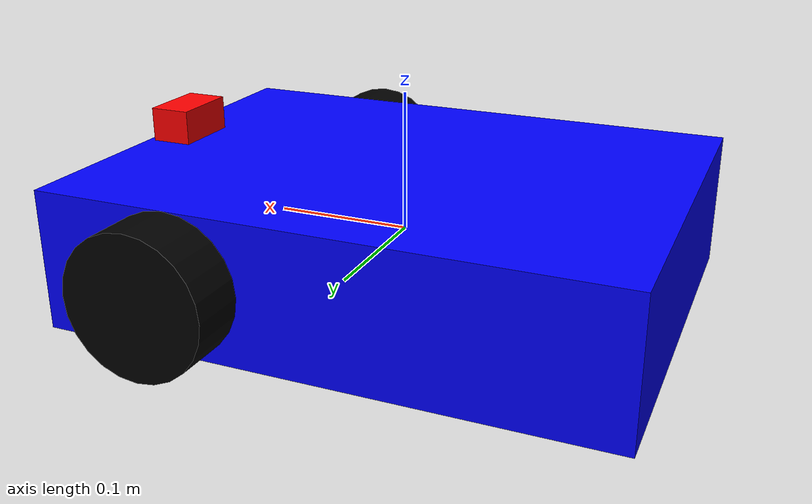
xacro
<?xml version="1.0"?>
<robot xmlns:xacro="http://www.ros.org/wiki/xacro" name="my_robot">

  <link name="base_link">
    <visual>
      <geometry>
        <box size="0.4 0.3 0.1"/>
      </geometry>
      <material name="blue">
        <color rgba="0.0 0.0 1.0 1.0"/>
      </material>
    </visual>
    <collision>
      <geometry>
        <box size="0.4 0.3 0.1"/>
      </geometry>
    </collision>
    <inertial>
        <mass value="5.0"/>
        <inertia ixx="0.04" ixy="0.0" ixz="0.0" iyy="0.07" iyz="0.0" izz="0.1"/>
    </inertial>
  </link>

  <link name="left_wheel_link">
    <visual>
      <geometry>
        <cylinder radius="0.05" length="0.04"/>
      </geometry>
      <material name="black">
        <color rgba="0.0 0.0 0.0 1.0"/>
      </material>
    </visual>
    <collision>
      <geometry>
        <cylinder radius="0.05" length="0.04"/>
      </geometry>
    </collision>
     <inertial>
        <mass value="0.5"/>
        <inertia ixx="0.0006" ixy="0.0" ixz="0.0" iyy="0.0006" iyz="0.0" izz="0.001"/>
    </inertial>
  </link>

  <link name="right_wheel_link">
    <visual>
      <geometry>
        <cylinder radius="0.05" length="0.04"/>
      </geometry>
      <material name="black"/>
    </visual>
    <collision>
      <geometry>
        <cylinder radius="0.05" length="0.04"/>
      </geometry>
    </collision>
    <inertial>
        <mass value="0.5"/>
        <inertia ixx="0.0006" ixy="0.0" ixz="0.0" iyy="0.0006" iyz="0.0" izz="0.001"/>
    </inertial>
  </link>

  <link name="caster_link">
    <visual>
      <geometry>
        <sphere radius="0.03"/>
      </geometry>
      <material name="grey">
        <color rgba="0.5 0.5 0.5 1.0"/>
      </material>
    </visual>
    <collision>
      <geometry>
        <sphere radius="0.03"/>
      </geometry>
    </collision>
    <inertial>
        <mass value="0.2"/>
        <inertia ixx="0.000048" ixy="0.0" ixz="0.0" iyy="0.000048" iyz="0.0" izz="0.000048"/>
    </inertial>
  </link>

  <link name="camera_link">
     <visual>
      <geometry>
        <box size="0.03 0.05 0.05"/>
      </geometry>
      <material name="red">
        <color rgba="1.0 0.0 0.0 1.0"/>
      </material>
    </visual>
     <collision>
      <geometry>
        <box size="0.03 0.05 0.05"/>
      </geometry>
    </collision>
     <inertial>
        <mass value="0.1"/>
        <inertia ixx="0.00004" ixy="0.0" ixz="0.0" iyy="0.00004" iyz="0.0" izz="0.00004"/>
    </inertial>
  </link>

  <joint name="left_wheel_joint" type="continuous">
    <parent link="base_link"/>
    <child link="left_wheel_link"/>
    <origin xyz="0.1 0.17 0.0" rpy="-1.5707 0 0"/>
    <axis xyz="0 0 1"/>
  </joint>

  <joint name="right_wheel_joint" type="continuous">
    <parent link="base_link"/>
    <child link="right_wheel_link"/>
    <origin xyz="0.1 -0.17 0.0" rpy="1.5707 0 0"/>
    <axis xyz="0 0 -1"/>
  </joint>

  <joint name="caster_joint" type="fixed">
    <parent link="base_link"/>
    <child link="caster_link"/>
    <origin xyz="-0.15 0.0 -0.02" rpy="0 0 0"/>
  </joint>

  <joint name="camera_joint" type="fixed">
    <parent link="base_link"/>
    <child link="camera_link"/>
    <origin xyz="0.18 0.0 0.05" rpy="0 0 0"/>
  </joint>

  <gazebo>
    <plugin name="diff_drive_controller" filename="libgazebo_ros_diff_drive.so">
      <ros>
        <command_topic>cmd_vel</command_topic>
        <odometry_topic>odom</odometry_topic>
        <odometry_frame>odom</odometry_frame>
        <robot_base_frame>base_link</robot_base_frame>
      </ros>

      <left_joint>left_wheel_joint</left_joint>
      <right_joint>right_wheel_joint</right_joint>
      <wheel_separation>0.34</wheel_separation>
      <wheel_diameter>0.1</wheel_diameter>

      <publish_odom>true</publish_odom>
      <publish_odom_tf>true</publish_odom_tf>
      <publish_wheel_tf>false</publish_wheel_tf>

      <update_rate>100</update_rate>
    </plugin>
  </gazebo>

  <gazebo reference="camera_link">
    <sensor type="camera" name="camera_sensor">
      <update_rate>30.0</update_rate>
      <camera name="head">
        <horizontal_fov>1.396</horizontal_fov>
        <image>
          <width>640</width>
          <height>480</height>
          <format>R8G8B8</format>
        </image>
        <clip>
          <near>0.02</near>
          <far>300</far>
        </clip>
      </camera>
      <plugin name="camera_controller" filename="libgazebo_ros_camera.so">
          <ros>
              <namespace>/camera</namespace>
              <image_topic>image_raw</image_topic>
              <info_topic>camera_info</info_topic>
          </ros>

          <camera_name>camera_sensor</camera_name>

          <frame_name>camera_link</frame_name>

          <hack_baseline>0.07</hack_baseline>
          <min_depth>0.001</min_depth>
          <max_depth>100.0</max_depth>
      </plugin>
    </sensor>
  </gazebo>

  <material name="blue">
     <color rgba="0.0 0.0 1.0 1.0"/>
   </material>
   <material name="black">
     <color rgba="0.0 0.0 0.0 1.0"/>
   </material>
    <material name="grey">
     <color rgba="0.5 0.5 0.5 1.0"/>
   </material>
   <material name="red">
     <color rgba="1.0 0.0 0.0 1.0"/>
   </material>

</robot>
